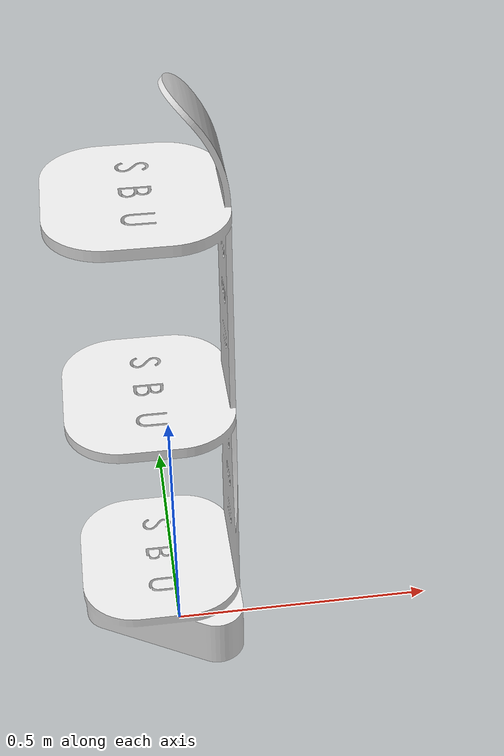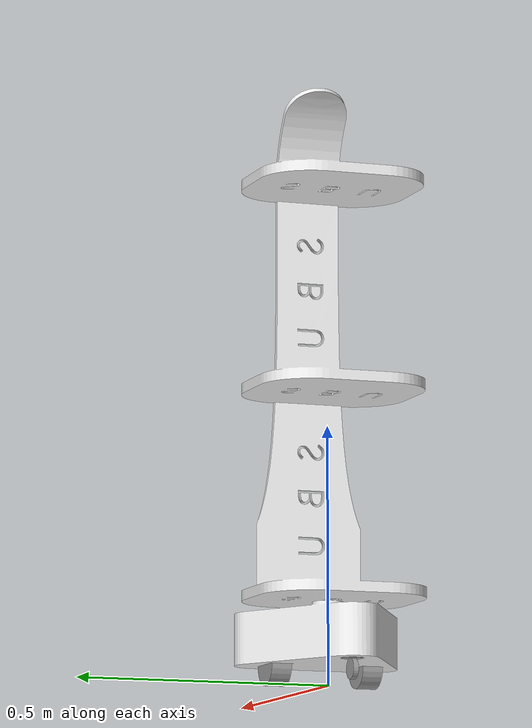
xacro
<?xml version="1.0"?>
<robot xmlns:xacro="http://www.ros.org/wiki/xacro">

    <xacro:property name="wheel_radius" value="0.04" />
    <xacro:property name="wheel_length" value="0.04" />

    <link name="base_footprint" />

    <link name="base_link">
        <visual>
            <geometry>
                <mesh filename="file://$(find sbu_robot_description)/meshes/base_link2.STL"
                      scale="0.001 0.001 0.001" />
            </geometry>
            <origin xyz="0 0 0" rpy="0 0 0" />
            <material name="white" />
        </visual>
        <inertial>
            <origin xyz="0 0 0" rpy="0 0 0"/>
            <mass value="1.96166"/>
            <inertia ixx="1.7307558e-02" ixy="0.0" ixz="-9.3540100e-06"
                     iyy="1.7302023e-02" iyz="0.0"
                     izz="2.8961675e-03"/>
        </inertial>
        <collision>
            <geometry>
                <mesh filename="file://$(find sbu_robot_description)/meshes/base_link.STL"
                      scale="0.001 0.001 0.001" />
            </geometry>
            <origin xyz="0 0 0" rpy="0 0 0" />
        </collision>

    </link>

    <xacro:macro name="wheel_link" params="prefix">
        <link name="${prefix}_wheel_link">
            <visual>
                <geometry>
                    <cylinder radius="${wheel_radius}" length="${wheel_length}" />
                </geometry>
                <origin xyz="0 0 0" rpy="${pi / 2.0} 0 0" />
                <material name="grey" />
            </visual>
            <collision>
                <geometry>
                    <cylinder radius="${wheel_radius}" length="${wheel_length}" />
                </geometry>
                <origin xyz="0 0 0" rpy="${pi / 2.0} 0 0" />
            </collision>
            <xacro:cylinder_inertia m="0.2" r="${wheel_radius}" l="${wheel_length}"
                                    xyz="0 0 0" rpy="${pi / 2.0} 0 0" />
        </link>
    </xacro:macro>

    <xacro:wheel_link prefix="right" />
    <xacro:wheel_link prefix="left" />

    <link name="caster_wheel_link_1">
        <visual>
            <geometry>
                <cylinder radius="0.02" length="0.01"/>
            </geometry>
            <origin xyz="0 0 0.005" rpy="0 0 0" />
            <material name="grey" />
        </visual>
        <collision>
            <geometry>
                <cylinder radius="0.02" length="0.01"/>
            </geometry>
            <origin xyz="0 0 0.005" rpy="0 0 0" />
        </collision>
        <xacro:cylinder_inertia m="0.1" r="0.02" l="0.01"
                              xyz="0 0 0.005" rpy="0 0 0" />
    </link>

    <link name="caster_wheel_link_2">
        <visual>
            <geometry>
                <cylinder radius="0.02" length="0.01"/>
            </geometry>
            <origin xyz="0 0 0" rpy="${pi / 2.0} 0 0" />
            <material name="grey" />
        </visual>
        <collision>
            <geometry>
                <cylinder radius="0.02" length="0.01"/>
            </geometry>
            <origin xyz="0 0 0" rpy="${pi / 2.0} 0 0" />
        </collision>
        <xacro:cylinder_inertia m="0.1" r="0.02" l="0.01"
                              xyz="0 0 0" rpy="${pi / 2.0} 0 0" />
    </link>

    <joint name="base_joint" type="fixed">
        <parent link="base_footprint"/>
        <child link="base_link"/>
        <origin xyz="0 0 ${wheel_radius}" rpy="0 0 0" />
    </joint>

    <joint name="base_right_wheel_joint" type="continuous">
        <parent link="base_link"/>
        <child link="right_wheel_link"/>
        <origin xyz="0.0425 -0.0925 0" rpy="0 0 0" />
        <axis xyz="0 1 0" />
    </joint>

    <joint name="base_left_wheel_joint" type="continuous">
        <parent link="base_link"/>
        <child link="left_wheel_link"/>
        <origin xyz="0.0425 0.0925 0" rpy="0 0 0" />
        <axis xyz="0 1 0" />
    </joint>

    <joint name="caster_wheel_joint_1" type="fixed">
        <parent link="base_link" />
        <child link="caster_wheel_link_1" />
        <origin xyz="-0.13 0 0" rpy="0 0 0" />
        <axis xyz="0 0 1" />
    </joint>

    <joint name="caster_wheel_joint_2" type="fixed">
        <parent link="caster_wheel_link_1" />
        <child link="caster_wheel_link_2" />
        <origin xyz="0 0 ${-wheel_radius / 2.0}" rpy="0 0 0" />
        <axis xyz="0 1 0" />
    </joint>

</robot>
